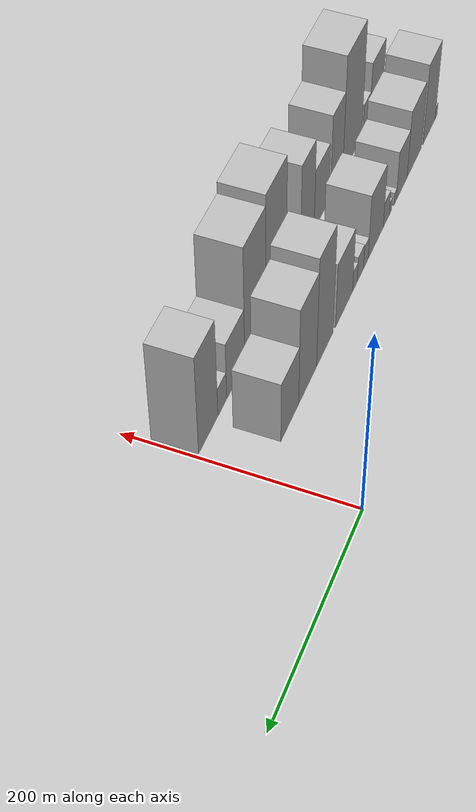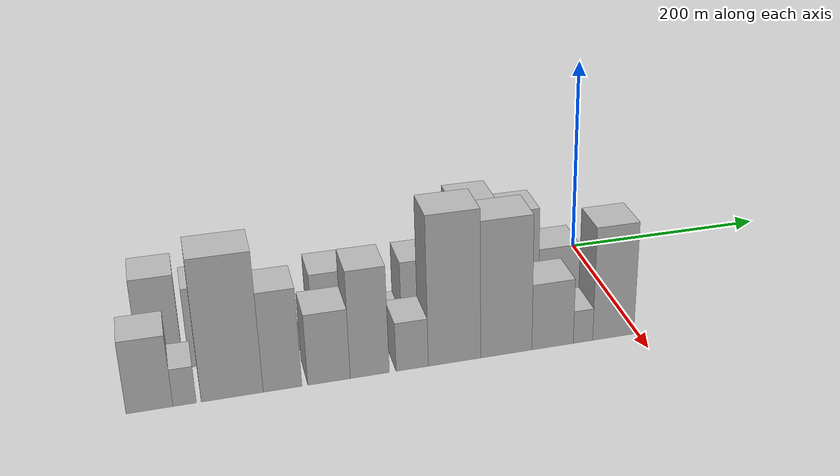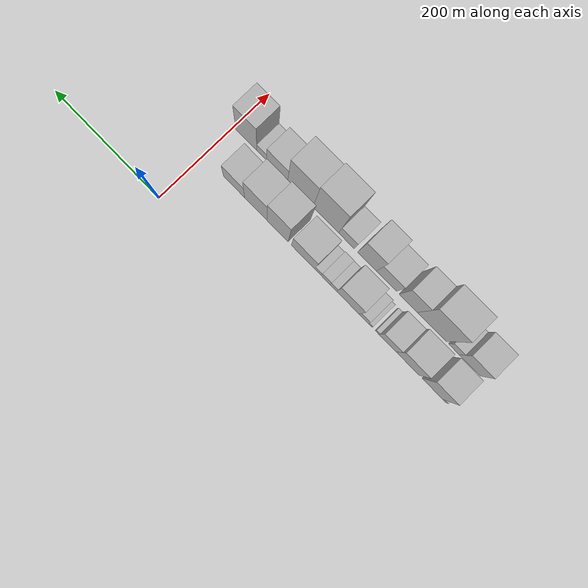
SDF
<sdf version="1.6">
 <world name="default">
  <model name="building_1">
   <static>1</static>
   <pose>100.0000 -439.8868 0 0.000000 0.000000 0.000000</pose>
   <link name="link">
    <pose>0 0 7.50 0 0 0</pose>
    <collision name="collision"><geometry><box><size>40.0000 6.2265 15.0000</size></box></geometry></collision>
    <visual name="visual">
     <cast_shadows>0</cast_shadows>
     <geometry><box><size>40.0000 6.2265 15.0000</size></box></geometry>
     <material>
      <script>
       <uri>model://HANNAS_wall/materials/scripts</uri>
       <uri>model://HANNAS_wall/materials/textures</uri>
       <name>vrc/HANNAS_wall</name>
      </script>
     </material>
    </visual>
   </link>
  </model>
  <model name="building_2">
   <static>1</static>
   <pose>100.0000 -418.5449 0 0.000000 0.000000 0.000000</pose>
   <link name="link">
    <pose>0 0 46.50 0 0 0</pose>
    <collision name="collision"><geometry><box><size>40.0000 36.4572 93.0000</size></box></geometry></collision>
    <visual name="visual">
     <cast_shadows>0</cast_shadows>
     <geometry><box><size>40.0000 36.4572 93.0000</size></box></geometry>
     <material>
      <script>
       <uri>model://HANNAS_wall/materials/scripts</uri>
       <uri>model://HANNAS_wall/materials/textures</uri>
       <name>vrc/HANNAS_wall</name>
      </script>
     </material>
    </visual>
   </link>
  </model>
  <model name="building_3">
   <static>1</static>
   <pose>100.0000 -374.5498 0 0.000000 0.000000 0.000000</pose>
   <link name="link">
    <pose>0 0 39.00 0 0 0</pose>
    <collision name="collision"><geometry><box><size>40.0000 41.5331 78.0000</size></box></geometry></collision>
    <visual name="visual">
     <cast_shadows>0</cast_shadows>
     <geometry><box><size>40.0000 41.5331 78.0000</size></box></geometry>
     <material>
      <script>
       <uri>model://HANNAS_wall/materials/scripts</uri>
       <uri>model://HANNAS_wall/materials/textures</uri>
       <name>vrc/HANNAS_wall</name>
      </script>
     </material>
    </visual>
   </link>
  </model>
  <model name="building_4">
   <static>1</static>
   <pose>100.0000 -338.5398 0 0.000000 0.000000 0.000000</pose>
   <link name="link">
    <pose>0 0 28.50 0 0 0</pose>
    <collision name="collision"><geometry><box><size>40.0000 30.4868 57.0000</size></box></geometry></collision>
    <visual name="visual">
     <cast_shadows>0</cast_shadows>
     <geometry><box><size>40.0000 30.4868 57.0000</size></box></geometry>
     <material>
      <script>
       <uri>model://HANNAS_wall/materials/scripts</uri>
       <uri>model://HANNAS_wall/materials/textures</uri>
       <name>vrc/HANNAS_wall</name>
      </script>
     </material>
    </visual>
   </link>
  </model>
  <model name="building_5">
   <static>1</static>
   <pose>100.0000 -319.9477 0 0.000000 0.000000 0.000000</pose>
   <link name="link">
    <pose>0 0 7.50 0 0 0</pose>
    <collision name="collision"><geometry><box><size>40.0000 6.6975 15.0000</size></box></geometry></collision>
    <visual name="visual">
     <cast_shadows>0</cast_shadows>
     <geometry><box><size>40.0000 6.6975 15.0000</size></box></geometry>
     <material>
      <script>
       <uri>model://HANNAS_wall/materials/scripts</uri>
       <uri>model://HANNAS_wall/materials/textures</uri>
       <name>vrc/HANNAS_wall</name>
      </script>
     </material>
    </visual>
   </link>
  </model>
  <model name="building_6">
   <static>1</static>
   <pose>100.0000 -307.1024 0 0.000000 0.000000 0.000000</pose>
   <link name="link">
    <pose>0 0 7.50 0 0 0</pose>
    <collision name="collision"><geometry><box><size>40.0000 6.9930 15.0000</size></box></geometry></collision>
    <visual name="visual">
     <cast_shadows>0</cast_shadows>
     <geometry><box><size>40.0000 6.9930 15.0000</size></box></geometry>
     <material>
      <script>
       <uri>model://HANNAS_wall/materials/scripts</uri>
       <uri>model://HANNAS_wall/materials/textures</uri>
       <name>vrc/HANNAS_wall</name>
      </script>
     </material>
    </visual>
   </link>
  </model>
  <model name="building_7">
   <static>1</static>
   <pose>100.0000 -295.4672 0 0.000000 0.000000 0.000000</pose>
   <link name="link">
    <pose>0 0 15.00 0 0 0</pose>
    <collision name="collision"><geometry><box><size>40.0000 16.2773 30.0000</size></box></geometry></collision>
    <visual name="visual">
     <cast_shadows>0</cast_shadows>
     <geometry><box><size>40.0000 16.2773 30.0000</size></box></geometry>
     <material>
      <script>
       <uri>model://HANNAS_wall/materials/scripts</uri>
       <uri>model://HANNAS_wall/materials/textures</uri>
       <name>vrc/HANNAS_wall</name>
      </script>
     </material>
    </visual>
   </link>
  </model>
  <model name="building_8">
   <static>1</static>
   <pose>100.0000 -267.0648 0 0.000000 0.000000 0.000000</pose>
   <link name="link">
    <pose>0 0 37.50 0 0 0</pose>
    <collision name="collision"><geometry><box><size>40.0000 40.5275 75.0000</size></box></geometry></collision>
    <visual name="visual">
     <cast_shadows>0</cast_shadows>
     <geometry><box><size>40.0000 40.5275 75.0000</size></box></geometry>
     <material>
      <script>
       <uri>model://HANNAS_wall/materials/scripts</uri>
       <uri>model://HANNAS_wall/materials/textures</uri>
       <name>vrc/HANNAS_wall</name>
      </script>
     </material>
    </visual>
   </link>
  </model>
  <model name="building_9">
   <static>1</static>
   <pose>100.0000 -240.7931 0 0.000000 0.000000 0.000000</pose>
   <link name="link">
    <pose>0 0 13.50 0 0 0</pose>
    <collision name="collision"><geometry><box><size>40.0000 12.0158 27.0000</size></box></geometry></collision>
    <visual name="visual">
     <cast_shadows>0</cast_shadows>
     <geometry><box><size>40.0000 12.0158 27.0000</size></box></geometry>
     <material>
      <script>
       <uri>model://HANNAS_wall/materials/scripts</uri>
       <uri>model://HANNAS_wall/materials/textures</uri>
       <name>vrc/HANNAS_wall</name>
      </script>
     </material>
    </visual>
   </link>
  </model>
  <model name="building_10">
   <static>1</static>
   <pose>100.0000 -226.6158 0 0.000000 0.000000 0.000000</pose>
   <link name="link">
    <pose>0 0 15.00 0 0 0</pose>
    <collision name="collision"><geometry><box><size>40.0000 16.3389 30.0000</size></box></geometry></collision>
    <visual name="visual">
     <cast_shadows>0</cast_shadows>
     <geometry><box><size>40.0000 16.3389 30.0000</size></box></geometry>
     <material>
      <script>
       <uri>model://HANNAS_wall/materials/scripts</uri>
       <uri>model://HANNAS_wall/materials/textures</uri>
       <name>vrc/HANNAS_wall</name>
      </script>
     </material>
    </visual>
   </link>
  </model>
  <model name="building_11">
   <static>1</static>
   <pose>100.0000 -212.6617 0 0.000000 0.000000 0.000000</pose>
   <link name="link">
    <pose>0 0 12.00 0 0 0</pose>
    <collision name="collision"><geometry><box><size>40.0000 11.5691 24.0000</size></box></geometry></collision>
    <visual name="visual">
     <cast_shadows>0</cast_shadows>
     <geometry><box><size>40.0000 11.5691 24.0000</size></box></geometry>
     <material>
      <script>
       <uri>model://HANNAS_wall/materials/scripts</uri>
       <uri>model://HANNAS_wall/materials/textures</uri>
       <name>vrc/HANNAS_wall</name>
      </script>
     </material>
    </visual>
   </link>
  </model>
  <model name="building_12">
   <static>1</static>
   <pose>100.0000 -185.4468 0 0.000000 0.000000 0.000000</pose>
   <link name="link">
    <pose>0 0 37.50 0 0 0</pose>
    <collision name="collision"><geometry><box><size>40.0000 42.8607 75.0000</size></box></geometry></collision>
    <visual name="visual">
     <cast_shadows>0</cast_shadows>
     <geometry><box><size>40.0000 42.8607 75.0000</size></box></geometry>
     <material>
      <script>
       <uri>model://HANNAS_wall/materials/scripts</uri>
       <uri>model://HANNAS_wall/materials/textures</uri>
       <name>vrc/HANNAS_wall</name>
      </script>
     </material>
    </visual>
   </link>
  </model>
  <model name="building_13">
   <static>1</static>
   <pose>100.0000 -138.3917 0 0.000000 0.000000 0.000000</pose>
   <link name="link">
    <pose>0 0 63.00 0 0 0</pose>
    <collision name="collision"><geometry><box><size>40.0000 39.2497 126.0000</size></box></geometry></collision>
    <visual name="visual">
     <cast_shadows>0</cast_shadows>
     <geometry><box><size>40.0000 39.2497 126.0000</size></box></geometry>
     <material>
      <script>
       <uri>model://HANNAS_wall/materials/scripts</uri>
       <uri>model://HANNAS_wall/materials/textures</uri>
       <name>vrc/HANNAS_wall</name>
      </script>
     </material>
    </visual>
   </link>
  </model>
  <model name="building_14">
   <static>1</static>
   <pose>100.0000 -98.0354 0 0.000000 0.000000 0.000000</pose>
   <link name="link">
    <pose>0 0 55.50 0 0 0</pose>
    <collision name="collision"><geometry><box><size>40.0000 41.4630 111.0000</size></box></geometry></collision>
    <visual name="visual">
     <cast_shadows>0</cast_shadows>
     <geometry><box><size>40.0000 41.4630 111.0000</size></box></geometry>
     <material>
      <script>
       <uri>model://HANNAS_wall/materials/scripts</uri>
       <uri>model://HANNAS_wall/materials/textures</uri>
       <name>vrc/HANNAS_wall</name>
      </script>
     </material>
    </visual>
   </link>
  </model>
  <model name="building_15">
   <static>1</static>
   <pose>100.0000 -57.5483 0 0.000000 0.000000 0.000000</pose>
   <link name="link">
    <pose>0 0 34.50 0 0 0</pose>
    <collision name="collision"><geometry><box><size>40.0000 39.5112 69.0000</size></box></geometry></collision>
    <visual name="visual">
     <cast_shadows>0</cast_shadows>
     <geometry><box><size>40.0000 39.5112 69.0000</size></box></geometry>
     <material>
      <script>
       <uri>model://HANNAS_wall/materials/scripts</uri>
       <uri>model://HANNAS_wall/materials/textures</uri>
       <name>vrc/HANNAS_wall</name>
      </script>
     </material>
    </visual>
   </link>
  </model>
  <model name="building_30">
   <static>1</static>
   <pose>155.0000 -431.1921 0 0.000000 0.000000 0.000000</pose>
   <link name="link">
    <pose>0 0 34.50 0 0 0</pose>
    <collision name="collision"><geometry><box><size>40.0000 37.6158 69.0000</size></box></geometry></collision>
    <visual name="visual">
     <cast_shadows>0</cast_shadows>
     <geometry><box><size>40.0000 37.6158 69.0000</size></box></geometry>
     <material>
      <script>
       <uri>model://HANNAS_wall/materials/scripts</uri>
       <uri>model://HANNAS_wall/materials/textures</uri>
       <name>vrc/HANNAS_wall</name>
      </script>
     </material>
    </visual>
   </link>
  </model>
  <model name="building_31">
   <static>1</static>
   <pose>155.0000 -402.8935 0 0.000000 0.000000 0.000000</pose>
   <link name="link">
    <pose>0 0 18.00 0 0 0</pose>
    <collision name="collision"><geometry><box><size>40.0000 18.9815 36.0000</size></box></geometry></collision>
    <visual name="visual">
     <cast_shadows>0</cast_shadows>
     <geometry><box><size>40.0000 18.9815 36.0000</size></box></geometry>
     <material>
      <script>
       <uri>model://HANNAS_wall/materials/scripts</uri>
       <uri>model://HANNAS_wall/materials/textures</uri>
       <name>vrc/HANNAS_wall</name>
      </script>
     </material>
    </visual>
   </link>
  </model>
  <model name="building_32">
   <static>1</static>
   <pose>155.0000 -363.7264 0 0.000000 0.000000 0.000000</pose>
   <link name="link">
    <pose>0 0 67.50 0 0 0</pose>
    <collision name="collision"><geometry><box><size>40.0000 51.3527 135.0000</size></box></geometry></collision>
    <visual name="visual">
     <cast_shadows>0</cast_shadows>
     <geometry><box><size>40.0000 51.3527 135.0000</size></box></geometry>
     <material>
      <script>
       <uri>model://HANNAS_wall/materials/scripts</uri>
       <uri>model://HANNAS_wall/materials/textures</uri>
       <name>vrc/HANNAS_wall</name>
      </script>
     </material>
    </visual>
   </link>
  </model>
  <model name="building_33">
   <static>1</static>
   <pose>155.0000 -321.7679 0 0.000000 0.000000 0.000000</pose>
   <link name="link">
    <pose>0 0 48.00 0 0 0</pose>
    <collision name="collision"><geometry><box><size>40.0000 32.5644 96.0000</size></box></geometry></collision>
    <visual name="visual">
     <cast_shadows>0</cast_shadows>
     <geometry><box><size>40.0000 32.5644 96.0000</size></box></geometry>
     <material>
      <script>
       <uri>model://HANNAS_wall/materials/scripts</uri>
       <uri>model://HANNAS_wall/materials/textures</uri>
       <name>vrc/HANNAS_wall</name>
      </script>
     </material>
    </visual>
   </link>
  </model>
  <model name="building_34">
   <static>1</static>
   <pose>155.0000 -282.2105 0 0.000000 0.000000 0.000000</pose>
   <link name="link">
    <pose>0 0 34.50 0 0 0</pose>
    <collision name="collision"><geometry><box><size>40.0000 36.5504 69.0000</size></box></geometry></collision>
    <visual name="visual">
     <cast_shadows>0</cast_shadows>
     <geometry><box><size>40.0000 36.5504 69.0000</size></box></geometry>
     <material>
      <script>
       <uri>model://HANNAS_wall/materials/scripts</uri>
       <uri>model://HANNAS_wall/materials/textures</uri>
       <name>vrc/HANNAS_wall</name>
      </script>
     </material>
    </visual>
   </link>
  </model>
  <model name="building_35">
   <static>1</static>
   <pose>155.0000 -246.9146 0 0.000000 0.000000 0.000000</pose>
   <link name="link">
    <pose>0 0 52.50 0 0 0</pose>
    <collision name="collision"><geometry><box><size>40.0000 34.0413 105.0000</size></box></geometry></collision>
    <visual name="visual">
     <cast_shadows>0</cast_shadows>
     <geometry><box><size>40.0000 34.0413 105.0000</size></box></geometry>
     <material>
      <script>
       <uri>model://HANNAS_wall/materials/scripts</uri>
       <uri>model://HANNAS_wall/materials/textures</uri>
       <name>vrc/HANNAS_wall</name>
      </script>
     </material>
    </visual>
   </link>
  </model>
  <model name="building_36">
   <static>1</static>
   <pose>155.0000 -209.5826 0 0.000000 0.000000 0.000000</pose>
   <link name="link">
    <pose>0 0 24.00 0 0 0</pose>
    <collision name="collision"><geometry><box><size>40.0000 28.6228 48.0000</size></box></geometry></collision>
    <visual name="visual">
     <cast_shadows>0</cast_shadows>
     <geometry><box><size>40.0000 28.6228 48.0000</size></box></geometry>
     <material>
      <script>
       <uri>model://HANNAS_wall/materials/scripts</uri>
       <uri>model://HANNAS_wall/materials/textures</uri>
       <name>vrc/HANNAS_wall</name>
      </script>
     </material>
    </visual>
   </link>
  </model>
  <model name="building_37">
   <static>1</static>
   <pose>155.0000 -171.6136 0 0.000000 0.000000 0.000000</pose>
   <link name="link">
    <pose>0 0 73.50 0 0 0</pose>
    <collision name="collision"><geometry><box><size>40.0000 47.3151 147.0000</size></box></geometry></collision>
    <visual name="visual">
     <cast_shadows>0</cast_shadows>
     <geometry><box><size>40.0000 47.3151 147.0000</size></box></geometry>
     <material>
      <script>
       <uri>model://HANNAS_wall/materials/scripts</uri>
       <uri>model://HANNAS_wall/materials/textures</uri>
       <name>vrc/HANNAS_wall</name>
      </script>
     </material>
    </visual>
   </link>
  </model>
  <model name="building_38">
   <static>1</static>
   <pose>155.0000 -124.3700 0 0.000000 0.000000 0.000000</pose>
   <link name="link">
    <pose>0 0 67.50 0 0 0</pose>
    <collision name="collision"><geometry><box><size>40.0000 47.1722 135.0000</size></box></geometry></collision>
    <visual name="visual">
     <cast_shadows>0</cast_shadows>
     <geometry><box><size>40.0000 47.1722 135.0000</size></box></geometry>
     <material>
      <script>
       <uri>model://HANNAS_wall/materials/scripts</uri>
       <uri>model://HANNAS_wall/materials/textures</uri>
       <name>vrc/HANNAS_wall</name>
      </script>
     </material>
    </visual>
   </link>
  </model>
  <model name="building_39">
   <static>1</static>
   <pose>155.0000 -81.2567 0 0.000000 0.000000 0.000000</pose>
   <link name="link">
    <pose>0 0 33.00 0 0 0</pose>
    <collision name="collision"><geometry><box><size>40.0000 39.0544 66.0000</size></box></geometry></collision>
    <visual name="visual">
     <cast_shadows>0</cast_shadows>
     <geometry><box><size>40.0000 39.0544 66.0000</size></box></geometry>
     <material>
      <script>
       <uri>model://HANNAS_wall/materials/scripts</uri>
       <uri>model://HANNAS_wall/materials/textures</uri>
       <name>vrc/HANNAS_wall</name>
      </script>
     </material>
    </visual>
   </link>
  </model>
  <model name="building_40">
   <static>1</static>
   <pose>155.0000 -52.5370 0 0.000000 0.000000 0.000000</pose>
   <link name="link">
    <pose>0 0 16.50 0 0 0</pose>
    <collision name="collision"><geometry><box><size>40.0000 18.3850 33.0000</size></box></geometry></collision>
    <visual name="visual">
     <cast_shadows>0</cast_shadows>
     <geometry><box><size>40.0000 18.3850 33.0000</size></box></geometry>
     <material>
      <script>
       <uri>model://HANNAS_wall/materials/scripts</uri>
       <uri>model://HANNAS_wall/materials/textures</uri>
       <name>vrc/HANNAS_wall</name>
      </script>
     </material>
    </visual>
   </link>
  </model>
  <model name="building_41">
   <static>1</static>
   <pose>155.0000 -23.5207 0 0.000000 0.000000 0.000000</pose>
   <link name="link">
    <pose>0 0 57.00 0 0 0</pose>
    <collision name="collision"><geometry><box><size>40.0000 39.6477 114.0000</size></box></geometry></collision>
    <visual name="visual">
     <cast_shadows>0</cast_shadows>
     <geometry><box><size>40.0000 39.6477 114.0000</size></box></geometry>
     <material>
      <script>
       <uri>model://HANNAS_wall/materials/scripts</uri>
       <uri>model://HANNAS_wall/materials/textures</uri>
       <name>vrc/HANNAS_wall</name>
      </script>
     </material>
    </visual>
   </link>
  </model>
 </world>
</sdf>
